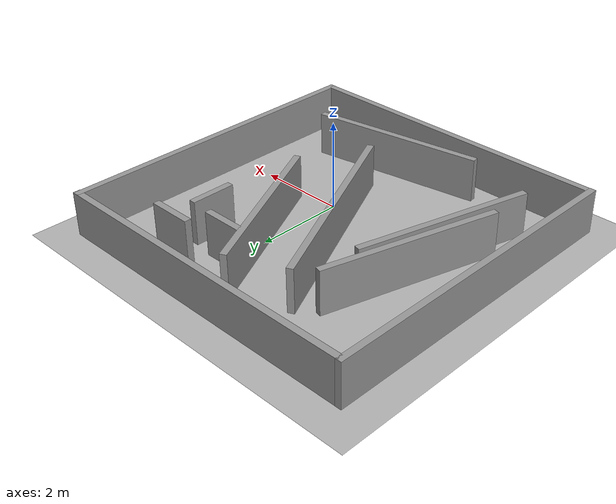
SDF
<?xml version="1.0" ?>
<sdf version="1.10">
  <world name="maze_world">

    <plugin
      filename="gz-sim-physics-system"
      name="gz::sim::systems::Physics">
    </plugin>

    <plugin
      filename="gz-sim-user-commands-system"
      name="gz::sim::systems::UserCommands">
    </plugin>

    <plugin
      filename="gz-sim-scene-broadcaster-system"
      name="gz::sim::systems::SceneBroadcaster">
    </plugin>

    <!-- Lighting -->
    <light type="directional" name="sun">
      <pose>0 0 10 0 0 0</pose>
      <diffuse>0.8 0.8 0.8 1</diffuse>
      <specular>0.2 0.2 0.2 1</specular>
      <direction>-0.5 0.1 -0.9</direction>
    </light>

    <!-- Ground plane -->
    <model name="ground_plane">
      <static>true</static>
      <link name="link">
        <collision name="collision">
          <geometry>
            <plane><normal>0 0 1</normal></plane>
          </geometry>
        </collision>
        <visual name="visual">
          <geometry>
            <plane>
              <normal>0 0 1</normal>
              <size>60 60</size>
            </plane>
          </geometry>
          <material>
            <diffuse>0.7 0.7 0.7 1</diffuse>
          </material>
        </visual>
      </link>
    </model>

    <!-- Maze_hr model embedded -->
    <model name='Maze_hr'>
      <static>1</static>
      <link name='Wall_11_clone'>
        <pose>-4.44208 0.738947 0 0 0 -1.5708</pose>
        <self_collide>0</self_collide>
        <kinematic>0</kinematic>
        <visual name='Wall_11_clone_Visual'>
          <pose>0 0 0.5 0 -0 0</pose>
          <geometry>
            <box>
              <size>7.42809 0.15 1</size>
            </box>
          </geometry>
          <material>
            <ambient>0.6 0.6 0.6 1</ambient>
            <diffuse>0.6 0.6 0.6 1</diffuse>
            <specular>0.6 0.6 0.6 1</specular>
          </material>
        </visual>
        <collision name='Wall_11_clone_Collision'>
          <pose>0 0 0.5 0 -0 0</pose>
          <geometry>
            <box>
              <size>7.42809 0.15 1</size>
            </box>
          </geometry>
        </collision>
      </link>
      <link name='Wall_6_clone'>
        <pose>-0.718431 4.37517 0 0 -0 0</pose>
        <self_collide>0</self_collide>
        <kinematic>0</kinematic>
        <visual name='Wall_6_clone_Visual'>
          <pose>0 0 0.5 0 -0 0</pose>
          <geometry>
            <box>
              <size>7.41907 0.15 1</size>
            </box>
          </geometry>
          <material>
            <ambient>0.6 0.6 0.6 1</ambient>
            <diffuse>0.6 0.6 0.6 1</diffuse>
            <specular>0.6 0.6 0.6 1</specular>
          </material>
        </visual>
        <collision name='Wall_6_clone_Collision'>
          <pose>0 0 0.5 0 -0 0</pose>
          <geometry>
            <box>
              <size>7.41907 0.15 1</size>
            </box>
          </geometry>
        </collision>
      </link>
      <link name='Wall_6'>
        <pose>-0.787021 -2.89307 0 0 0 0</pose>
        <self_collide>0</self_collide>
        <kinematic>0</kinematic>
        <visual name='Wall_6_Visual'>
          <pose>0 0 0.5 0 -0 0</pose>
          <geometry>
            <box>
              <size>7.34986 0.15 1</size>
            </box>
          </geometry>
          <material>
            <ambient>0.6 0.6 0.6 1</ambient>
            <diffuse>0.6 0.6 0.6 1</diffuse>
            <specular>0.6 0.6 0.6 1</specular>
          </material>
        </visual>
        <collision name='Wall_6_Collision'>
          <pose>0 0 0.5 0 -0 0</pose>
          <geometry>
            <box>
              <size>7.34986 0.15 1</size>
            </box>
          </geometry>
        </collision>
      </link>
      <link name='Wall_7'>
        <pose>2.90228 0.736783 0 0 -0 1.5708</pose>
        <self_collide>0</self_collide>
        <kinematic>0</kinematic>
        <visual name='Wall_7_Visual'>
          <pose>0 0 0.5 0 -0 0</pose>
          <geometry>
            <box>
              <size>7.42238 0.15 1</size>
            </box>
          </geometry>
          <material>
            <ambient>0.6 0.6 0.6 1</ambient>
            <diffuse>0.6 0.6 0.6 1</diffuse>
            <specular>0.6 0.6 0.6 1</specular>
          </material>
        </visual>
        <collision name='Wall_7_Collision'>
          <pose>0 0 0.5 0 -0 0</pose>
          <geometry>
            <box>
              <size>7.42238 0.15 1</size>
            </box>
          </geometry>
        </collision>
      </link>
      <link name='Wall_1'>
        <pose>-3.0 0.0 0 0 0 1.30708</pose>
        <self_collide>0</self_collide>
        <kinematic>0</kinematic>
        <visual name='Wall_1_Visual'>
          <pose>0 0 0.5 0 -0 0</pose>
          <geometry>
            <box>
              <size>4.0 0.15 1</size>
            </box>
          </geometry>
          <material>
            <ambient>0.6 0.6 0.6 1</ambient>
            <diffuse>0.6 0.6 0.6 1</diffuse>
            <specular>0.6 0.6 0.6 1</specular>
          </material>
        </visual>
        <collision name='Wall_1_Collision'>
          <pose>0 0 0.5 0 -0 0</pose>
          <geometry>
            <box>
              <size>4.0 0.15 1</size>
            </box>
          </geometry>
        </collision>
      </link>
      <link name='Wall_2'>
        <pose>-3.0 1.0 0 0 0 1.29399</pose>
        <self_collide>0</self_collide>
        <kinematic>0</kinematic>
        <visual name='Wall_2_Visual'>
          <pose>0 0 0.5 0 -0 0</pose>
          <geometry>
            <box>
              <size>4.0 0.15 1</size>
            </box>
          </geometry>
          <material>
            <ambient>0.6 0.6 0.6 1</ambient>
            <diffuse>0.6 0.6 0.6 1</diffuse>
            <specular>0.6 0.6 0.6 1</specular>
          </material>
        </visual>
        <collision name='Wall_2_Collision'>
          <pose>0 0 0.5 0 -0 0</pose>
          <geometry>
            <box>
              <size>4.0 0.15 1</size>
            </box>
          </geometry>
        </collision>
      </link>
      <link name='Wall_3'>
        <pose>-1.0 1.0 0 0 0 2.01882</pose>
        <self_collide>0</self_collide>
        <kinematic>0</kinematic>
        <visual name='Wall_3_Visual'>
          <pose>0 0 0.5 0 -0 0</pose>
          <geometry>
            <box>
              <size>5.0 0.15 1</size>
            </box>
          </geometry>
          <material>
            <ambient>0.6 0.6 0.6 1</ambient>
            <diffuse>0.6 0.6 0.6 1</diffuse>
            <specular>0.6 0.6 0.6 1</specular>
          </material>
        </visual>
        <collision name='Wall_3_Collision'>
          <pose>0 0 0.5 0 -0 0</pose>
          <geometry>
            <box>
              <size>5.0 0.15 1</size>
            </box>
          </geometry>
        </collision>
      </link>
      <link name='Wall_4'>
        <pose>0.0 2.0 0 0 0 2.02947</pose>
        <self_collide>0</self_collide>
        <kinematic>0</kinematic>
        <visual name='Wall_4_Visual'>
          <pose>0 0 0.5 0 -0 0</pose>
          <geometry>
            <box>
              <size>4.0 0.15 1</size>
            </box>
          </geometry>
          <material>
            <ambient>0.6 0.6 0.6 1</ambient>
            <diffuse>0.6 0.6 0.6 1</diffuse>
            <specular>0.6 0.6 0.6 1</specular>
          </material>
        </visual>
        <collision name='Wall_4_Collision'>
          <pose>0 0 0.5 0 -0 0</pose>
          <geometry>
            <box>
              <size>4.0 0.15 1</size>
            </box>
          </geometry>
        </collision>
      </link>
      <link name='Wall_5'>
        <pose>0.0 -2.0 0 0 0 0.16458</pose>
        <self_collide>0</self_collide>
        <kinematic>0</kinematic>
        <visual name='Wall_5_Visual'>
          <pose>0 0 0.5 0 -0 0</pose>
          <geometry>
            <box>
              <size>4.0 0.15 1</size>
            </box>
          </geometry>
          <material>
            <ambient>0.6 0.6 0.6 1</ambient>
            <diffuse>0.6 0.6 0.6 1</diffuse>
            <specular>0.6 0.6 0.6 1</specular>
          </material>
        </visual>
        <collision name='Wall_5_Collision'>
          <pose>0 0 0.5 0 -0 0</pose>
          <geometry>
            <box>
              <size>4.0 0.15 1</size>
            </box>
          </geometry>
        </collision>
      </link>
      <link name='Wall_8'>
        <pose>1.0 2.5 0 0 0 1.5708</pose>
        <self_collide>0</self_collide>
        <kinematic>0</kinematic>
        <visual name='Wall_8_Visual'>
          <pose>0 0 0.5 0 -0 0</pose>
          <geometry>
            <box>
              <size>1.0 0.15 1</size>
            </box>
          </geometry>
          <material>
            <ambient>0.6 0.6 0.6 1</ambient>
            <diffuse>0.6 0.6 0.6 1</diffuse>
            <specular>0.6 0.6 0.6 1</specular>
          </material>
        </visual>
        <collision name='Wall_8_Collision'>
          <pose>0 0 0.5 0 -0 0</pose>
          <geometry>
            <box>
              <size>1.0 0.15 1</size>
            </box>
          </geometry>
        </collision>
      </link>
      <link name='Wall_9'>
        <pose>1.0 3.5 0 0 0 0.0</pose>
        <self_collide>0</self_collide>
        <kinematic>0</kinematic>
        <visual name='Wall_9_Visual'>
          <pose>0 0 0.5 0 -0 0</pose>
          <geometry>
            <box>
              <size>1.0 0.15 1</size>
            </box>
          </geometry>
          <material>
            <ambient>0.6 0.6 0.6 1</ambient>
            <diffuse>0.6 0.6 0.6 1</diffuse>
            <specular>0.6 0.6 0.6 1</specular>
          </material>
        </visual>
        <collision name='Wall_9_Collision'>
          <pose>0 0 0.5 0 -0 0</pose>
          <geometry>
            <box>
              <size>1.0 0.15 1</size>
            </box>
          </geometry>
        </collision>
      </link>
      <link name='Wall_10'>
        <pose>0.0 3.0 0 0 0 0.0</pose>
        <self_collide>0</self_collide>
        <kinematic>0</kinematic>
        <visual name='Wall_10_Visual'>
          <pose>0 0 0.5 0 -0 0</pose>
          <geometry>
            <box>
              <size>1.0 0.15 1</size>
            </box>
          </geometry>
          <material>
            <ambient>0.6 0.6 0.6 1</ambient>
            <diffuse>0.6 0.6 0.6 1</diffuse>
            <specular>0.6 0.6 0.6 1</specular>
          </material>
        </visual>
        <collision name='Wall_10_Collision'>
          <pose>0 0 0.5 0 -0 0</pose>
          <geometry>
            <box>
              <size>1.0 0.15 1</size>
            </box>
          </geometry>
        </collision>
      </link>
      <allow_auto_disable>1</allow_auto_disable>
    </model>

  </world>
</sdf>
